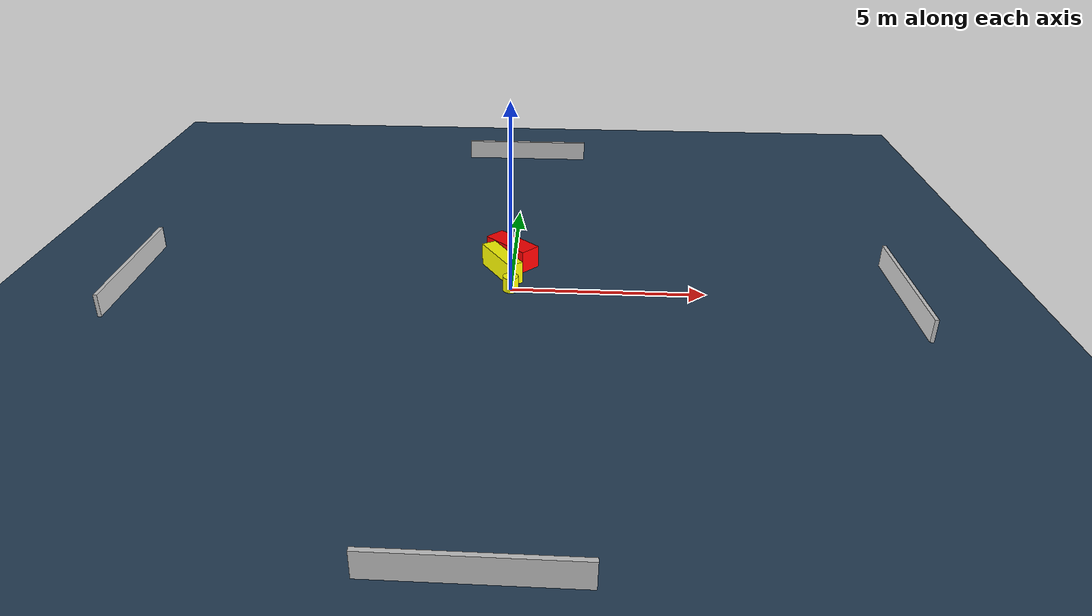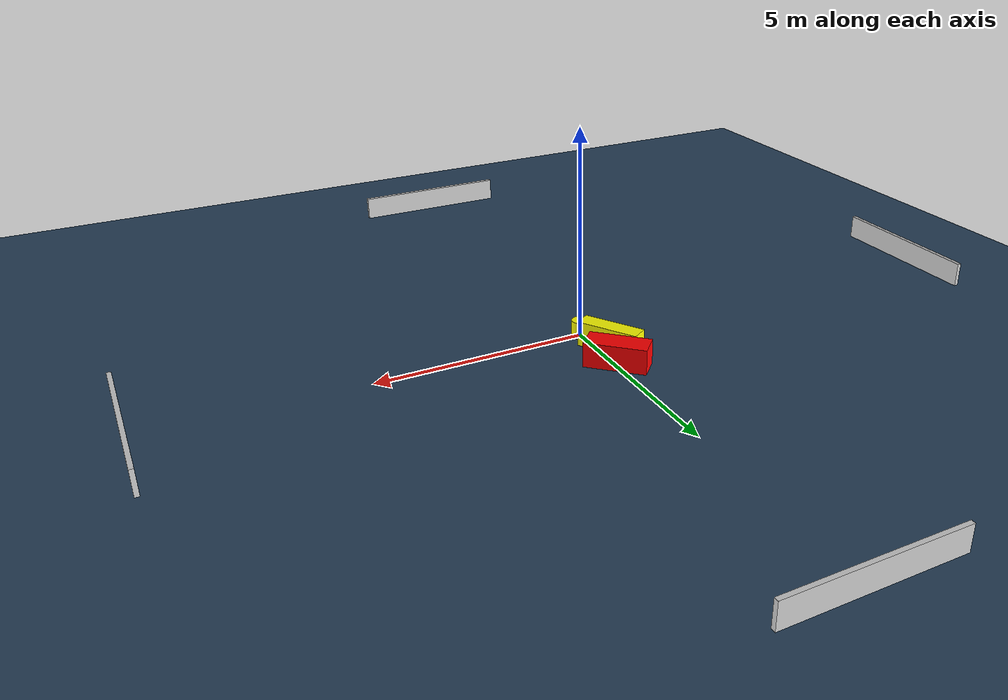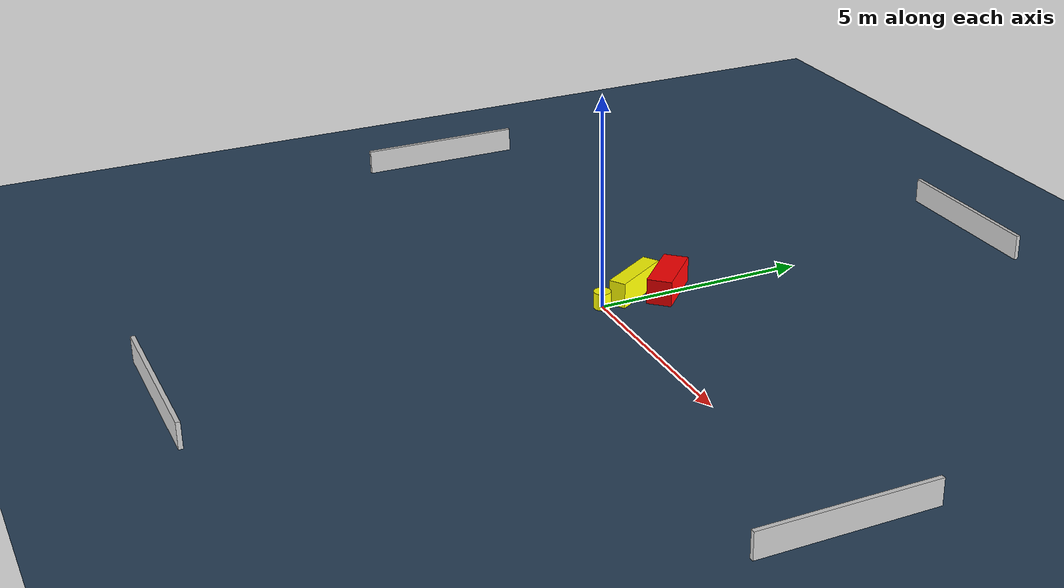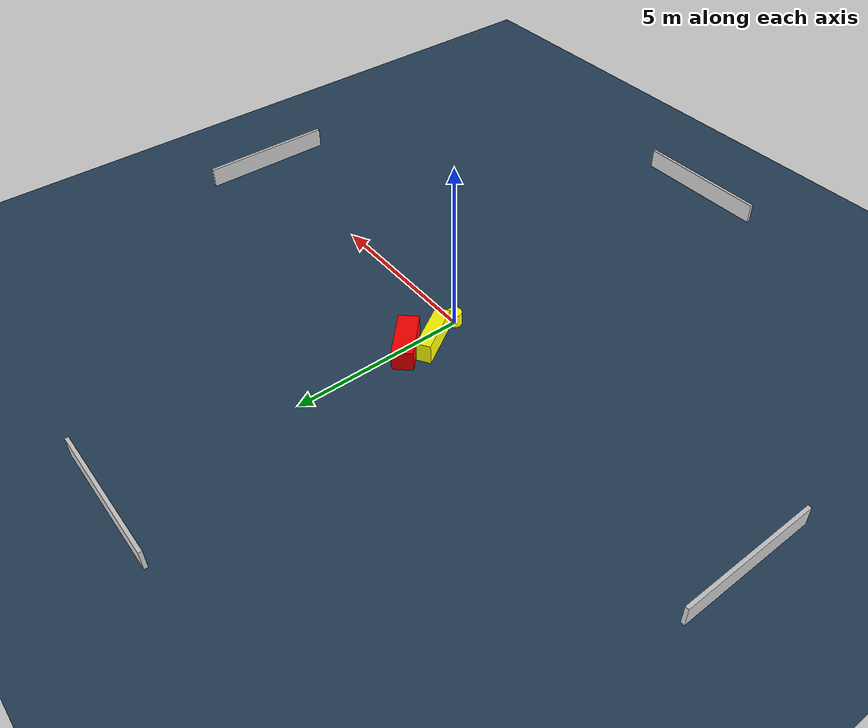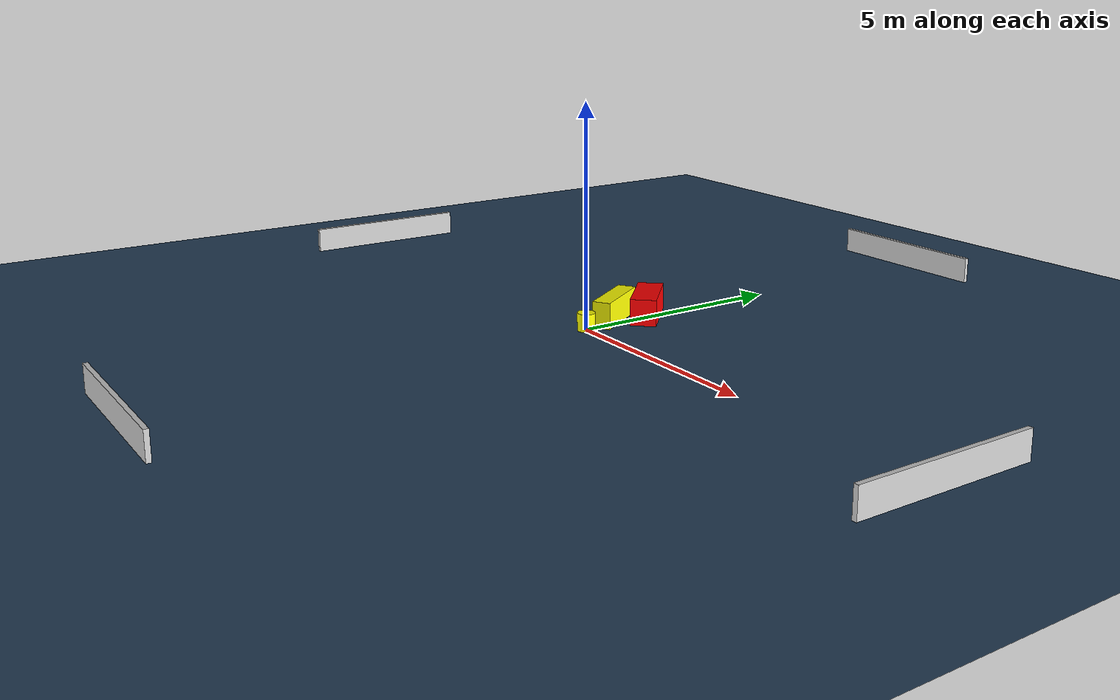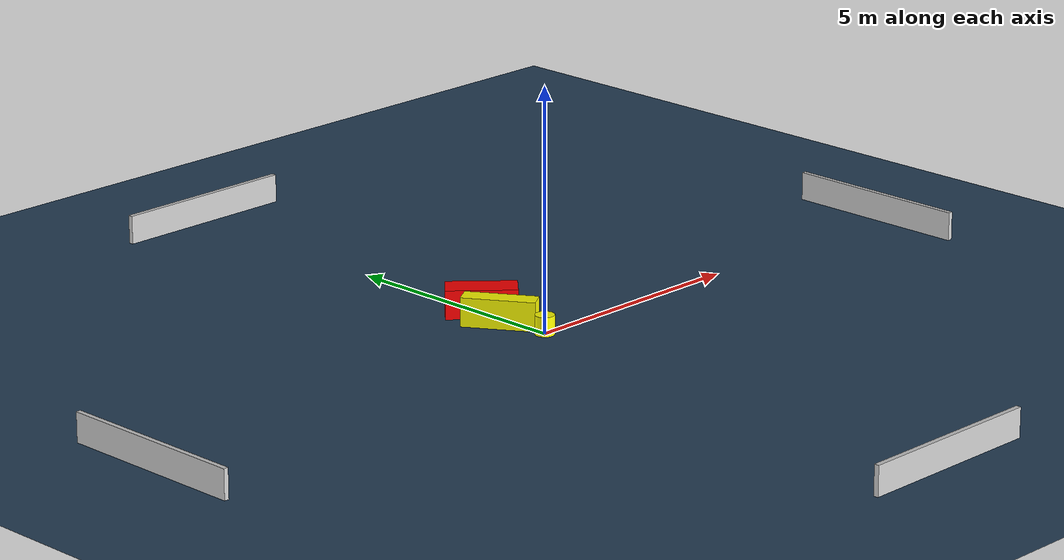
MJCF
<?xml version="1.0" ?>
<mujoco model="generated_environment">
  <option timestep="0.01" integrator="RK4" cone="elliptic"/>
  <default>
    <geom density="1"/>
  </default>
  <asset>
    <texture builtin="gradient" height="3072" name="skybox" rgb1="0.3 0.5 0.7" rgb2="0 0 0" type="skybox" width="512"/>
    <texture builtin="checker" height="300" name="groundplane" rgb1="0.2 0.3 0.4" rgb2="0.1 0.2 0.3" type="2d" width="300"/>
    <material name="groundplane" reflectance="0.2" texrepeat="5 5" texture="groundplane"/>
  </asset>
  <worldbody>
    <light dir="0 0 -1" directional="true" pos="0 0 1.5"/>
    <geom condim="3" friction="0.5 0.005 0.001" material="groundplane" name="floor" pos="0 0 0" size="0 0 0.05" type="plane"/>
    <body name="walls">
      <geom name="wall_1" condim="4" pos="-10.0 0.0 0.3" rgba="0.800000011920929 0.800000011920929 0.800000011920929 1.0" size="0.05 2.0 0.3" type="box"/>
      <geom name="wall_2" condim="4" pos="10.0 0.0 0.3" rgba="0.800000011920929 0.800000011920929 0.800000011920929 1.0" size="0.05 2.0 0.3" type="box"/>
      <geom name="wall_3" condim="4" pos="0.0 -10.0 0.3" rgba="0.800000011920929 0.800000011920929 0.800000011920929 1.0" size="2.0 0.05 0.3" type="box"/>
      <geom name="wall_4" condim="4" pos="0.0 10.0 0.3" rgba="0.800000011920929 0.800000011920929 0.800000011920929 1.0" size="2.0 0.05 0.3" type="box"/>
    </body>
    <body name="robot">
      <joint name="joint_x" type="slide" pos="0 0 0" axis="1 0 0"/>
      <joint name="joint_y" type="slide" pos="0 0 0" axis="0 1 0"/>
      <geom name="robot" type="cylinder" pos="0.0 0.0 0.2" size="0.2 0.2 0.0" mass="5.0" friction="1.0 0.005 0.0001" condim="4" rgba="1.0 1.0 0.0 1.0"/>
    </body>
    <body name="obstacle_1_movable">
      <geom name="obstacle_1_movable" condim="4" pos="-0.2841771314008059 0.9464312105286589 0.3" euler="0 0 302.1791892921065" friction="0.0 0.005 0.001" rgba="1.0 1.0 0.0 1.0" size="0.7474727954721068 0.20269575077619822 0.3" type="box" mass="0.1"/>
      <joint type="free"/>
    </body>
    <body name="obstacle_2_static">
      <geom name="obstacle_2_static" condim="4" pos="-0.05417257573420644 1.6852168140483308 0.3" euler="0 0 136.553081398976" friction="0.0 0.005 0.001" rgba="1.0 0.0 0.0 1.0" size="0.7199610608973697 0.2910590089002481 0.3" type="box"/>
    </body>
  </worldbody>
  <actuator>
    <motor name="actuator_x" joint="joint_x" gear="1" ctrlrange="-1 1"/>
    <motor name="actuator_y" joint="joint_y" gear="1" ctrlrange="-1 1"/>
  </actuator>
</mujoco>
